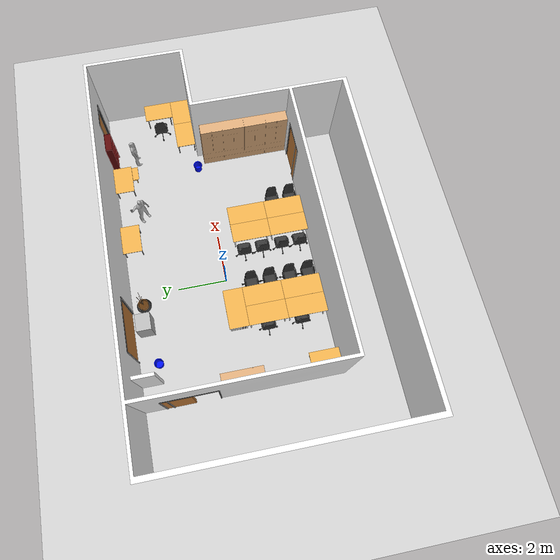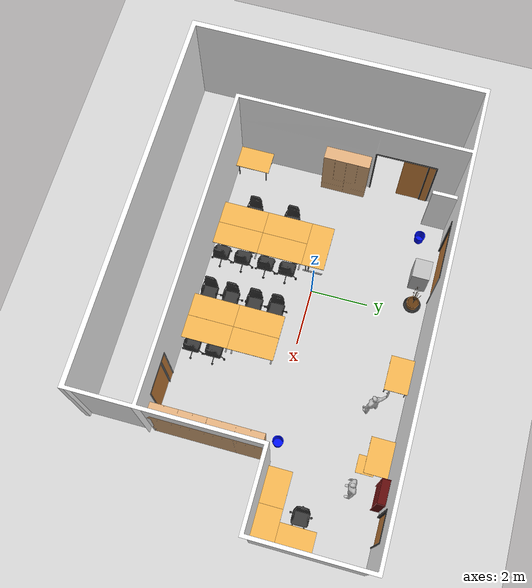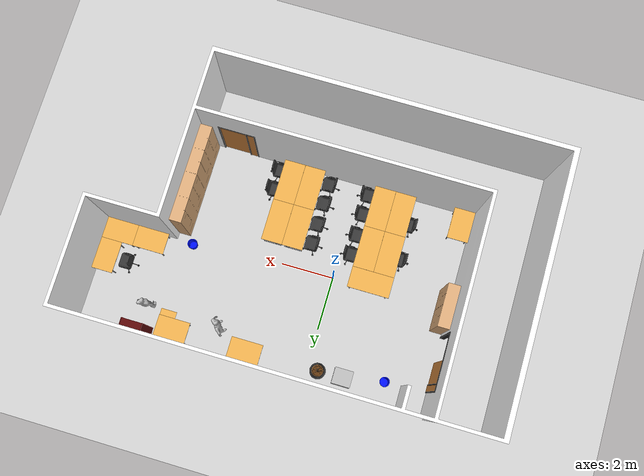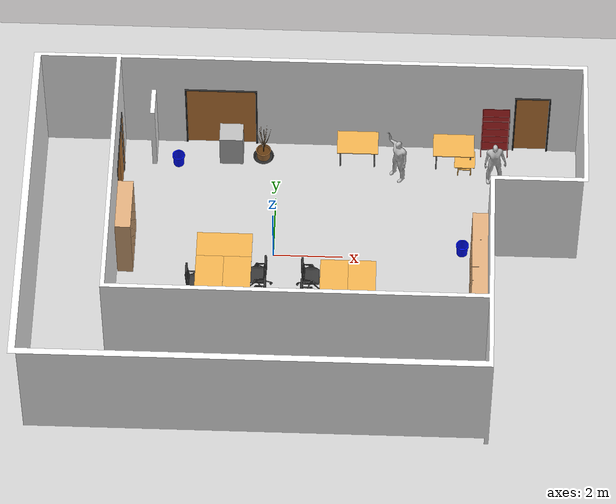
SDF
<sdf version="1.6">
 <world name="clf">
  <light type="point" name="indoor_light">
   <cast_shadows>false</cast_shadows>
   <pose>0 0 4 0 0 0</pose>
   <diffuse>0.5 0.5 0.5 1</diffuse>
   <specular>0.1 0.1 0.1 1</specular>
   <attenuation>
    <range>100</range>
    <constant>0.65</constant>
    <linear>0.00</linear>
    <quadratic>0.00</quadratic>
   </attenuation>
  </light>
  <light type="directional" name="sun">
   <pose>-3.5 -0.12 4 0.4 0 -1</pose>
   <diffuse>0.5 0.5 0.5 1</diffuse>
   <specular>0.1 0.1 0.1 1</specular>
   <attenuation>
    <range>100</range>
    <constant>0.0</constant>
    <linear>0.00</linear>
    <quadratic>0.00</quadratic>
   </attenuation>
  </light>
  <include><uri>model:///clf_actor</uri><name>actor_a</name><pose>6.35 2.89 0 0 0 0.14</pose></include>
  <include><uri>model:///clf_actor_waving</uri><name>actor_b</name><pose>3.52 2.93 0 0 0 0.73</pose></include>
  <include><uri>model:///clf_walls</uri><name>walls</name><pose>-4.5 4 0 0 -0 0</pose></include>
  <include><uri>model:///clf_cupboard_a</uri><name>cupboard_a</name><pose>-4.25 0.1 0 0 -0 0</pose></include>
  <include><uri>model:///clf_cupboard_b</uri><name>cupboard_b</name><pose>5.9 -1.9 0 0 -0 0</pose></include>
  <include><uri>model:///clf_shelf</uri><name>shelf</name><pose>6.35 3.96 0 0 0 0</pose></include>
  <include><uri>model:///clf_tiago_box</uri><name>tiago_box</name><pose>-1.35 3.5 0 0 -0 0</pose></include>
  <include><uri>model:///clf_flowerpot</uri><name>flowerpot</name><pose>-0.42 3.5 0.03 0 -0 0</pose></include>
  <include><uri>model:///clf_bin</uri><name>bin_a</name><pose>5.45 0.27 -0 0 -0 0</pose></include>
  <include><uri>model:///clf_bin</uri><name>bin_b</name><pose>-2.9 3.2 0 0 -0 0</pose></include>
  <include>
   <uri>model:///clf_grasp_table</uri>
   <name>grasp_table</name>
   <pose>5.48 3.22 -0 0 0 -1.5708</pose>
  </include>
  <include>
   <uri>model:///clf_table_short</uri>
   <name>table_short_leroy</name>
   <pose>-4.09 -3.2 0 0 -0 0</pose>
  </include>
  <include>
   <uri>model:///clf_table_short</uri>
   <name>table_short_a</name>
   <pose>5.15 3.57 -0 0 0 -1.5708</pose>
  </include>
  <include>
   <uri>model:///clf_table_short</uri>
   <name>table_short_b</name>
   <pose>2.34 3.59 -0 0 0 -1.5708</pose>
  </include>
  <include>
   <uri>model:///clf_table_short</uri>
   <name>table_short_c</name>
   <pose>8.33 1.61 0 0 -0 0</pose>
  </include>
  <include>
   <uri>model:///clf_table_short</uri>
   <name>table_short_d</name>
   <pose>8.13 0.61 0 0 0 -1.5708</pose>
  </include>
  <include>
   <uri>model:///clf_table_short</uri>
   <name>table_short_e</name>
   <pose>6.93 0.61 0 0 0 -1.5708</pose>
  </include>
  <include>
   <uri>model:///clf_table_long</uri>
   <name>table_long_david</name>
   <pose>-1.4 -0.16 0 0 0 -1.5708</pose>
  </include>
  <include>
   <uri>model:///clf_table_long</uri>
   <name>table_long_buildor</name>
   <pose>2.58 -2.99 0 0 -0 -3.14</pose>
  </include>
  <include>
   <uri>model:///clf_table_long</uri>
   <name>table_long_thorben</name>
   <pose>2.58 -1.39 0 0 -0 -3.14</pose>
  </include>
  <include>
   <uri>model:///clf_table_long</uri>
   <name>table_long_markus</name>
   <pose>1.78 -1.39 0 0 -0 0</pose>
  </include>
  <include>
   <uri>model:///clf_table_long</uri>
   <name>table_long_a</name>
   <pose>1.78 -2.99 -0 0 -0 0</pose>
  </include>
  <include>
   <uri>model:///clf_table_long</uri>
   <name>table_long_b</name>
   <pose>-1 -2.96 0 0 -0 -3.14</pose>
  </include>
  <include>
   <uri>model:///clf_table_long</uri>
   <name>table_long_julia</name>
   <pose>-1 -1.36 0 0 -0 -3.14</pose>
  </include>
  <include>
   <uri>model:///clf_table_long</uri>
   <name>table_long_jan</name>
   <pose>-1.8 -1.36 0 0 -0 0</pose>
  </include>
  <include><uri>model:///clf_table_long</uri><name>table_long_c</name><pose>-1.8 -2.96 0 0 -0 0</pose></include>
  <include><uri>model:///clf_office_chair</uri><name>chair_one</name><pose>-0.4 -1 0 0 0 3.14</pose></include>
  <include>
   <uri>model:///clf_office_chair</uri>
   <name>chair_two</name>
   <pose>-0.4 -1.77 0 0 0 3.14</pose>
  </include>
  <include>
   <uri>model:///clf_office_chair</uri>
   <name>chair_three</name>
   <pose>-0.4 -2.6 0 0 0 3.14</pose>
  </include>
  <include>
   <uri>model:///clf_office_chair</uri>
   <name>chair_four</name>
   <pose>-0.4 -3.37 0 0 0 3.14</pose>
  </include>
  <include><uri>model:///clf_office_chair</uri><name>chair_five</name><pose>1.1 -1 0 0 0 0</pose></include>
  <include><uri>model:///clf_office_chair</uri><name>chair_six</name><pose>1.1 -1.77 0 0 0 0</pose></include>
  <include><uri>model:///clf_office_chair</uri><name>chair_seven</name><pose>1.1 -2.6 0 0 0 0</pose></include>
  <include><uri>model:///clf_office_chair</uri><name>chair_eight</name><pose>1.1 -3.37 0 0 0 0</pose></include>
  <include><uri>model:///clf_office_chair</uri><name>chair_nine</name><pose>-2.2 -2.7 0 0 0 0</pose></include>
  <include><uri>model:///clf_office_chair</uri><name>chair_ten</name><pose>-2.2 -1.33 0 0 0 0</pose></include>
  <include>
   <uri>model:///clf_office_chair</uri>
   <name>chair_eleven</name>
   <pose>3.08 -2.6 0 0 0 3.14</pose>
  </include>
  <include>
   <uri>model:///clf_office_chair</uri>
   <name>chair_twelve</name>
   <pose>3.08 -3.37 0 0 0 3.14</pose>
  </include>
  <include><uri>model:///clf_office_chair</uri><name>chair_david</name><pose>7.6 1.6 0 0 0 0</pose></include>
  <include>
   <uri>model:///clf_computer</uri>
   <name>computer_one</name>
   <pose>-1.08 -0.85 0.22 0 0 0</pose>
  </include>
  <include><uri>model:///clf_computer</uri><name>computer_two</name><pose>-1.08 -1.9 0.22 0 0 0</pose></include>
  <include>
   <uri>model:///clf_computer</uri>
   <name>computer_three</name>
   <pose>-1.08 -2.42 0.22 0 0 0</pose>
  </include>
  <include>
   <uri>model:///clf_computer</uri>
   <name>computer_four</name>
   <pose>-1.08 -3.45 0.22 0 0 0</pose>
  </include>
  <include>
   <uri>model:///clf_computer</uri>
   <name>computer_five</name>
   <pose>-1.7 -0.85 0.22 0 0 0</pose>
  </include>
  <include><uri>model:///clf_computer</uri><name>computer_six</name><pose>-1.7 -1.9 0.22 0 0 0</pose></include>
  <include>
   <uri>model:///clf_computer</uri>
   <name>computer_seven</name>
   <pose>-1.7 -2.42 0.22 0 0 0</pose>
  </include>
  <include>
   <uri>model:///clf_computer</uri>
   <name>computer_eight</name>
   <pose>-1.7 -3.45 0.22 0 0 0</pose>
  </include>
 </world>
</sdf>

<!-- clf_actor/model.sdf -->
<sdf version="1.6">
  <model name="clf_actor">
    <static>true</static>
    <link name="link">
      <collision name="collision">
        <geometry>
          <mesh>
            <uri>model://clf_actor/meshes/clf_actor.dae</uri>
          </mesh>
        </geometry>
      </collision>
      <visual name="visual">
        <geometry>
          <mesh>
            <uri>model://clf_actor/meshes/clf_actor.dae</uri>
          </mesh>
        </geometry>
      </visual>
    </link>
  </model>
</sdf>

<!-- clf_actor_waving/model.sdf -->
<sdf version="1.6">
<model name="clf_actor_waving">
  <static>true</static>
  <link name="link">
    <collision name="collision">
      <geometry>
        <mesh>
          <uri>model://clf_actor_waving/meshes/clf_actor_waving.dae</uri>
        </mesh>
      </geometry>
    </collision>
    <visual name="visual">
      <geometry>
        <mesh>
          <uri>model://clf_actor_waving/meshes/clf_actor_waving.dae</uri>
        </mesh>
      </geometry>
    </visual>
  </link>
</model>
</sdf>

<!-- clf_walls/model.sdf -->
<sdf version="1.6">
  <model name="clf_walls">
    <static>true</static>
    <link name="link">
      <!--   Collision   -->
      <collision name="walls_collision">
        <geometry>
          <mesh>
            <uri>model://clf_walls/meshes/clf_walls.dae</uri>
          </mesh>
        </geometry>
      </collision>
      <collision name="floor_collision">
        <geometry>
          <plane>
            <normal>0 0 1</normal>
            <size>100 100</size>
          </plane>
        </geometry>
        <surface>
          <friction>
            <ode>
              <mu>100</mu>
              <mu2>50</mu2>
            </ode>
          </friction>
        </surface>
      </collision>
      <collision name="doors_metal_collision">
        <geometry>
          <mesh>
            <uri>model://clf_walls/meshes/clf_walls_doors_metal.dae</uri>
          </mesh>
        </geometry>
      </collision>
      <collision name="doors_wood_collision">
        <geometry>
          <mesh>
            <uri>model://clf_walls/meshes/clf_walls_doors_wood.dae</uri>
          </mesh>
        </geometry>
      </collision>
      <!--   Visual   -->
      <visual name="walls_visual">
        <material>
          <ambient>1 1 1 1.0</ambient>
          <diffuse>1 1 1 1.0</diffuse>
          <specular>0 0 0 0</specular>
          <emissive>0.1 0.1 0.1 1</emissive>
        </material>
        <geometry>
          <mesh>
            <uri>model://clf_walls/meshes/clf_walls.dae</uri>
          </mesh>
        </geometry>
      </visual>
      <visual name="floor_visual">
        <material>
          <script>
            <uri>file://materials/scripts/floor.material</uri>
            <name>CLF/Floor</name>
          </script>
        </material>
        <geometry>
          <plane>
            <normal>0 0 1</normal>
            <size>100 100</size>
          </plane>
        </geometry>
      </visual>
      <visual name="doors_metal_visual">
        <material>
          <ambient>0.13 0.13 0.13 1.0</ambient>
          <diffuse>0.13 0.13 0.13 1.0</diffuse>
          <specular>0 0 0 0</specular>
          <emissive>0.1 0.1 0.1 1</emissive>
        </material>
        <geometry>
          <mesh>
            <uri>model://clf_walls/meshes/clf_walls_doors_metal.dae</uri>
          </mesh>
        </geometry>
      </visual>
      <visual name="doors_wood_visual">
        <material>
          <ambient>0.8 0.51 0.23 1.0</ambient>
          <diffuse>0.8 0.51 0.23 1.0</diffuse>
          <specular>0 0 0 0</specular>
          <emissive>0.1 0.1 0.1 1</emissive>
        </material>
        <geometry>
          <mesh>
            <uri>model://clf_walls/meshes/clf_walls_doors_wood.dae</uri>
          </mesh>
        </geometry>
      </visual>
    </link>
  </model>
</sdf>

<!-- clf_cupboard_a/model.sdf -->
<sdf version="1.6">
  <model name="clf_cupboard_a">
    <static>true</static>
    <link name="link">
      <collision name="collision">
        <geometry>
          <mesh>
            <uri>model://clf_cupboard_a/meshes/clf_cupboard_a.dae</uri>
          </mesh>
        </geometry>
      </collision>
      <visual name="visual">
        <material>
          <ambient>0.86 0.67 0.48 1.0</ambient>
          <diffuse>0.86 0.67 0.48 1.0</diffuse>
          <specular>0 0 0 0</specular>
          <emissive>0 0 0 1</emissive>
        </material>
        <geometry>
          <mesh>
            <uri>model://clf_cupboard_a/meshes/clf_cupboard_a.dae</uri>
          </mesh>
        </geometry>
      </visual>
    </link>
  </model>
</sdf>

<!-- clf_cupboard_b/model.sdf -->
<sdf version="1.6">
  <model name="clf_cupboard_b">
    <static>true</static>
    <link name="link">
      <collision name="collision">
        <geometry>
          <mesh>
            <uri>model://clf_cupboard_b/meshes/clf_cupboard_b.dae</uri>
          </mesh>
        </geometry>
      </collision>
      <visual name="visual">
        <material>
          <ambient>0.86 0.67 0.48 1.0</ambient>
          <diffuse>0.86 0.67 0.48 1.0</diffuse>
          <specular>0 0 0 0</specular>
          <emissive>0 0 0 1</emissive>
        </material>
        <geometry>
          <mesh>
            <uri>model://clf_cupboard_b/meshes/clf_cupboard_b.dae</uri>
          </mesh>
        </geometry>
      </visual>
    </link>
  </model>
</sdf>

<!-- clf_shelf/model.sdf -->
<sdf version="1.5">
  <model name="bookshelf">
    <static>true</static>
    <link name="link">
      <inertial>
        <mass>35.0</mass>
        <pose>0 -0.125 1 0 0 0</pose>
      </inertial>
      <collision name="back_c">
        <pose>0 0.005 1.01 0 0 0</pose>
        <geometry>
          <box>
            <size>0.78 0.01 2.02</size>
          </box>
        </geometry>
      </collision>
      <visual name="back_v">
        <pose>0 0.005 1.01 0 0 0</pose>
        <geometry>
          <box>
            <size>0.78 0.01 2.02</size>
          </box>
        </geometry>
        <material>
          <ambient>0.36 0.035 0.035 1.0</ambient>
          <diffuse>0.36 0.035 0.035 1.0</diffuse>
          <specular>0 0 0 0</specular>
          <emissive>0 0 0 1</emissive>
        </material>
      </visual>
      <collision name="left_c">
        <pose>0.389 -0.125 1.01 0 0 0</pose>
        <geometry>
          <box>
            <size>0.018 0.28 2.02</size>
          </box>
        </geometry>
      </collision>
      <visual name="left_v">
        <pose>0.389 -0.125 1.01 0 0 0</pose>
        <geometry>
          <box>
            <size>0.018 0.28 2.02</size>
          </box>
        </geometry>
        <material>
          <ambient>0.36 0.035 0.035 1.0</ambient>
          <diffuse>0.36 0.035 0.035 1.0</diffuse>
          <specular>0 0 0 0</specular>
          <emissive>0 0 0 1</emissive>
        </material>
      </visual>
      <collision name="right_c">
        <pose>-0.389 -0.125 1.01 0 0 0</pose>
        <geometry>
          <box>
            <size>0.018 0.28 2.02</size>
          </box>
        </geometry>
      </collision>
      <visual name="right_v">
        <pose>-0.389 -0.125 1.01 0 0 0</pose>
        <geometry>
          <box>
            <size>0.018 0.28 2.02</size>
          </box>
        </geometry>
        <material>
          <ambient>0.36 0.035 0.035 1.0</ambient>
          <diffuse>0.36 0.035 0.035 1.0</diffuse>
          <specular>0 0 0 0</specular>
          <emissive>0 0 0 1</emissive>
        </material>
      </visual>
      <collision name="floor1_c">
        <pose>0 -0.125 0.404 0 0 0</pose>
        <geometry>
          <box>
            <size>0.76 0.26 0.018</size>
          </box>
        </geometry>
      </collision>
      <visual name="floor1_v">
        <pose>0 -0.125 0.404 0 0 0</pose>
        <geometry>
          <box>
            <size>0.76 0.26 0.018</size>
          </box>
        </geometry>
        <material>
          <ambient>0.36 0.035 0.035 1.0</ambient>
          <diffuse>0.36 0.035 0.035 1.0</diffuse>
          <specular>0 0 0 0</specular>
          <emissive>0 0 0 1</emissive>
        </material>
      </visual>
      <collision name="floor2_c">
        <pose>0 -0.125 0.757 0 0 0</pose>
        <geometry>
          <box>
            <size>0.76 0.26 0.018</size>
          </box>
        </geometry>
      </collision>
      <visual name="floor2_v">
        <pose>0 -0.125 0.757 0 0 0</pose>
        <geometry>
          <box>
            <size>0.76 0.26 0.018</size>
          </box>
        </geometry>
        <material>
          <ambient>0.36 0.035 0.035 1.0</ambient>
          <diffuse>0.36 0.035 0.035 1.0</diffuse>
          <specular>0 0 0 0</specular>
          <emissive>0 0 0 1</emissive>
        </material>
      </visual>
      <collision name="floor3_c">
        <pose>0 -0.125 1.045 0 0 0</pose>
        <geometry>
          <box>
            <size>0.76 0.26 0.018</size>
          </box>
        </geometry>
      </collision>
      <visual name="floor3_v">
        <pose>0 -0.125 1.045 0 0 0</pose>
        <geometry>
          <box>
            <size>0.76 0.26 0.018</size>
          </box>
        </geometry>
        <material>
          <ambient>0.36 0.035 0.035 1.0</ambient>
          <diffuse>0.36 0.035 0.035 1.0</diffuse>
          <specular>0 0 0 0</specular>
          <emissive>0 0 0 1</emissive>
        </material>
      </visual>
      <collision name="floor4_c">
        <pose>0 -0.125 1.397 0 0 0</pose>
        <geometry>
          <box>
            <size>0.76 0.26 0.018</size>
          </box>
        </geometry>
      </collision>
      <visual name="floor4_v">
        <pose>0 -0.125 1.397 0 0 0</pose>
        <geometry>
          <box>
            <size>0.76 0.26 0.018</size>
          </box>
        </geometry>
        <material>
          <ambient>0.36 0.035 0.035 1.0</ambient>
          <diffuse>0.36 0.035 0.035 1.0</diffuse>
          <specular>0 0 0 0</specular>
          <emissive>0 0 0 1</emissive>
        </material>
      </visual>
      <collision name="floor5_c">
        <pose>0 -0.125 1.781 0 0 0</pose>
        <geometry>
          <box>
            <size>0.76 0.26 0.018</size>
          </box>
        </geometry>
      </collision>
      <visual name="floor5_v">
        <pose>0 -0.125 1.781 0 0 0</pose>
        <geometry>
          <box>
            <size>0.76 0.26 0.018</size>
          </box>
        </geometry>
        <material>
          <ambient>0.36 0.035 0.035 1.0</ambient>
          <diffuse>0.36 0.035 0.035 1.0</diffuse>
          <specular>0 0 0 0</specular>
          <emissive>0 0 0 1</emissive>
        </material>
      </visual>
      <collision name="floor6_c">
        <pose>0 -0.125 2.003 0 0 0</pose>
        <geometry>
          <box>
            <size>0.76 0.26 0.018</size>
          </box>
        </geometry>
      </collision>
      <visual name="floor6_v">
        <pose>0 -0.125 2.003 0 0 0</pose>
        <geometry>
          <box>
            <size>0.76 0.26 0.018</size>
          </box>
        </geometry>
        <material>
          <ambient>0.36 0.035 0.035 1.0</ambient>
          <diffuse>0.36 0.035 0.035 1.0</diffuse>
          <specular>0 0 0 0</specular>
          <emissive>0 0 0 1</emissive>
        </material>
      </visual>
    </link>
  </model>
</sdf>

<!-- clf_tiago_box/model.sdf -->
<sdf version="1.6">
  <model name="clf_tiago_box">
    <static>true</static>
    <link name="link">
      <collision name="collision">
        <geometry>
          <mesh>
            <uri>model://clf_tiago_box/meshes/tiago_box_collision.dae</uri>
          </mesh>
        </geometry>
      </collision>
      <visual name="visual">
        <geometry>
          <mesh>
            <uri>model://clf_tiago_box/meshes/tiago_box.dae</uri>
          </mesh>
        </geometry>
      </visual>
    </link>
  </model>
</sdf>

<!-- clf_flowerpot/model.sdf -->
<sdf version="1.6">
  <model name="clf_flowerpot">
    <static>true</static>
    <link name="link">
    <!--   Collision   -->
      <collision name="pot_bottom_collision">
        <geometry>
          <mesh>
            <uri>model://clf_flowerpot/meshes/clf_flowerpot_pot_bottom.dae</uri>
          </mesh>
        </geometry>
      </collision>
      <collision name="pot_top_collision">
        <geometry>
          <mesh>
            <uri>model://clf_flowerpot/meshes/clf_flowerpot_pot_top.dae</uri>
          </mesh>
        </geometry>
      </collision>
      <collision name="dirt_collision">
        <geometry>
          <mesh>
            <uri>model://clf_flowerpot/meshes/clf_flowerpot_dirt.dae</uri>
          </mesh>
        </geometry>
      </collision>
      <collision name="plant_collision">
        <geometry>
          <mesh>
            <uri>model://clf_flowerpot/meshes/clf_flowerpot_plant.dae</uri>
          </mesh>
        </geometry>
      </collision>
      <!--    Visual    -->
      <visual name="pot_bottom_visual">
        <material>
          <ambient>0.16 0.16 0.16 1.0</ambient>
          <diffuse>0.16 0.16 0.16 1.0</diffuse>
          <specular>0 0 0 0</specular>
          <emissive>0 0 0 1</emissive>
        </material>
        <geometry>
          <mesh>
            <uri>model://clf_flowerpot/meshes/clf_flowerpot_pot_bottom.dae</uri>
          </mesh>
        </geometry>
      </visual>
      <visual name="pot_top_visual">
        <material>
          <ambient>0.64 0.43 0.22 1.0</ambient>
          <diffuse>0.64 0.43 0.22 1.0</diffuse>
          <specular>0 0 0 0</specular>
          <emissive>0 0 0 1</emissive>
        </material>
        <geometry>
          <mesh>
            <uri>model://clf_flowerpot/meshes/clf_flowerpot_pot_top.dae</uri>
          </mesh>
        </geometry>
      </visual>
      <visual name="dirt_visual">
        <material>
          <ambient>0.38 0.22 0.06 1.0</ambient>
          <diffuse>0.38 0.22 0.06 1.0</diffuse>
          <specular>0 0 0 0</specular>
          <emissive>0 0 0 1</emissive>
        </material>
      <geometry>
        <mesh>
          <uri>model://clf_flowerpot/meshes/clf_flowerpot_dirt.dae</uri>
        </mesh>
      </geometry>
    </visual>
      <visual name="plant_visual">
        <material>
          <ambient>0.27 0.19 0.1 1.0</ambient>
          <diffuse>0.27 0.19 0.1 1.0</diffuse>
          <specular>0 0 0 0</specular>
          <emissive>0 0 0 1</emissive>
        </material>
      <geometry>
        <mesh>
          <uri>model://clf_flowerpot/meshes/clf_flowerpot_plant.dae</uri>
        </mesh>
      </geometry>
    </visual>
    </link>
  </model>
</sdf>

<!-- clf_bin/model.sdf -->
<sdf version="1.6">
  <model name="clf_bin">
    <static>false</static>
    <link name="link">
      <collision name="collision">
        <geometry>
          <mesh>
            <uri>model://clf_bin/meshes/clf_bin.dae</uri>
          </mesh>
        </geometry>
      </collision>
      <visual name="visual">
        <material>
          <ambient>0 0.06 1 1</ambient>
          <diffuse>0 0.06 1 1</diffuse>
          <specular>0 0 0 0</specular>
          <emissive>0 0 0 1</emissive>
        </material>
        <geometry>
          <mesh>
            <uri>model://clf_bin/meshes/clf_bin.dae</uri>
          </mesh>
        </geometry>
      </visual>
    </link>
  </model>
</sdf>

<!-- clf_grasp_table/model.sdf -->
<sdf version="1.6">
    <model name="clf_grasp_table">
        <static>false</static>
        <link name="link">
            <collision name="collision">
                <geometry>
                    <mesh>
                        <uri>model://clf_grasp_table/meshes/clf_grasp_table.dae</uri>
                    </mesh>
                </geometry>
            </collision>
            <visual name="visual">
                <material>
                    <ambient>0.92 0.68 0.3 1.0</ambient>
                    <diffuse>0.92 0.68 0.3 1.0</diffuse>
                    <specular>0 0 0 0</specular>
                    <emissive>0 0 0 1</emissive>
                </material>
                <geometry>
                    <mesh>
                        <uri>model://clf_grasp_table/meshes/clf_grasp_table.dae</uri>
                    </mesh>
                </geometry>
            </visual>
        </link>
    </model>
</sdf>

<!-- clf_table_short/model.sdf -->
<sdf version="1.6">
  <model name="clf_table_short">
    <static>true</static>
    <link name="link">
      <collision name="wood_collision">
        <geometry>
          <mesh>
            <uri>model://clf_table_short/meshes/clf_table_short_wood.dae</uri>
          </mesh>
        </geometry>
      </collision>
      <visual name="wood_visual">
        <material>
          <ambient>0.92 0.68 0.3 1.0</ambient>
          <diffuse>0.92 0.68 0.3 1.0</diffuse>
          <specular>0 0 0 0</specular>
          <emissive>0 0 0 1</emissive>
        </material>
        <geometry>
          <mesh>
            <uri>model://clf_table_short/meshes/clf_table_short_wood.dae</uri>
          </mesh>
        </geometry>
      </visual>
      <collision name="metal_collision">
        <geometry>
          <mesh>
            <uri>model://clf_table_short/meshes/clf_table_short_metal.dae</uri>
          </mesh>
        </geometry>
      </collision>
      <visual name="metal_visual">
        <material>
          <ambient>0.5 0.5 0.5 1.0</ambient>
          <diffuse>0.5 0.5 0.5 1.0</diffuse>
          <specular>0.5 0.5 0.5 64</specular>
          <emissive>0 0 0 1</emissive>
        </material>
        <geometry>
          <mesh>
            <uri>model://clf_table_short/meshes/clf_table_short_metal.dae</uri>
          </mesh>
        </geometry>
      </visual>
    </link>
  </model>
</sdf>

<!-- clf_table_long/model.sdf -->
<sdf version="1.6">
  <model name="clf_table_long">
    <static>true</static>
    <link name="link">
      <collision name="wood_collision">
        <geometry>
          <mesh>
            <uri>model://clf_table_long/meshes/clf_table_long_wood.dae</uri>
          </mesh>
        </geometry>
      </collision>
      <visual name="wood_visual">
        <material>
          <ambient>0.92 0.68 0.3 1.0</ambient>
          <diffuse>0.92 0.68 0.3 1.0</diffuse>
          <specular>0 0 0 0</specular>
          <emissive>0 0 0 1</emissive>
        </material>
        <geometry>
          <mesh>
            <uri>model://clf_table_long/meshes/clf_table_long_wood.dae</uri>
          </mesh>
        </geometry>
      </visual>
      <collision name="metal_collision">
        <geometry>
          <mesh>
            <uri>model://clf_table_long/meshes/clf_table_long_metal.dae</uri>
          </mesh>
        </geometry>
      </collision>
      <visual name="metal_visual">
        <material>
          <ambient>0.5 0.5 0.5 1.0</ambient>
          <diffuse>0.5 0.5 0.5 1.0</diffuse>
          <specular>0.5 0.5 0.5 64</specular>
          <emissive>0 0 0 1</emissive>
        </material>
        <geometry>
          <mesh>
            <uri>model://clf_table_long/meshes/clf_table_long_metal.dae</uri>
          </mesh>
        </geometry>
      </visual>
    </link>
  </model>
</sdf>

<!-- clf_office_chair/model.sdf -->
<sdf version="1.6">
    <model name="clf_office_chair">
        <static>true</static>
        <link name="link">
            <collision name="collision">
                <geometry>
                    <mesh>
                        <uri>model://clf_office_chair/meshes/clf_office_chair.dae</uri>
                    </mesh>
                </geometry>
            </collision>
            <visual name="visual">
                <material>
                    <ambient>0.21 0.21 0.21 1.0</ambient>
                    <diffuse>0.21 0.21 0.21 1.0</diffuse>
                    <specular>0 0 0 0</specular>
                    <emissive>0 0 0 1</emissive>
                </material>
                <geometry>
                    <mesh>
                        <uri>model://clf_office_chair/meshes/clf_office_chair.dae</uri>
                    </mesh>
                </geometry>
            </visual>
        </link>
    </model>
</sdf>

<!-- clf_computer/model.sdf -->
<sdf version="1.6">
  <model name="clf_computer">
    <static>true</static>
    <link name="link">
      <collision name="collision">
        <geometry>
          <box>
            <size>0.5 0.5 0.5</size>
          </box>
        </geometry>
      </collision>
      <visual name="visual">
        <material>
          <ambient>0.1 0.1 0.1 1.0</ambient>
          <diffuse>0.1 0.1 0.1 1.0</diffuse>
          <specular>0 0 0 0</specular>
          <emissive>0 0 0 1</emissive>
        </material>
        <geometry>
          <box>
            <size>0.5 0.22 0.44</size>
          </box>
        </geometry>
      </visual>
    </link>
  </model>
</sdf>
